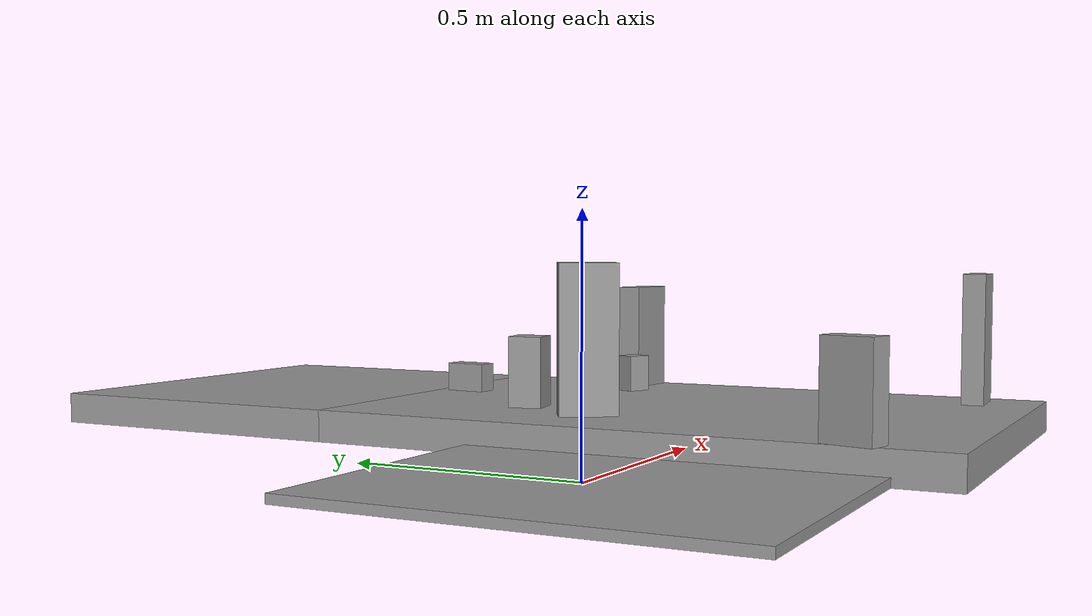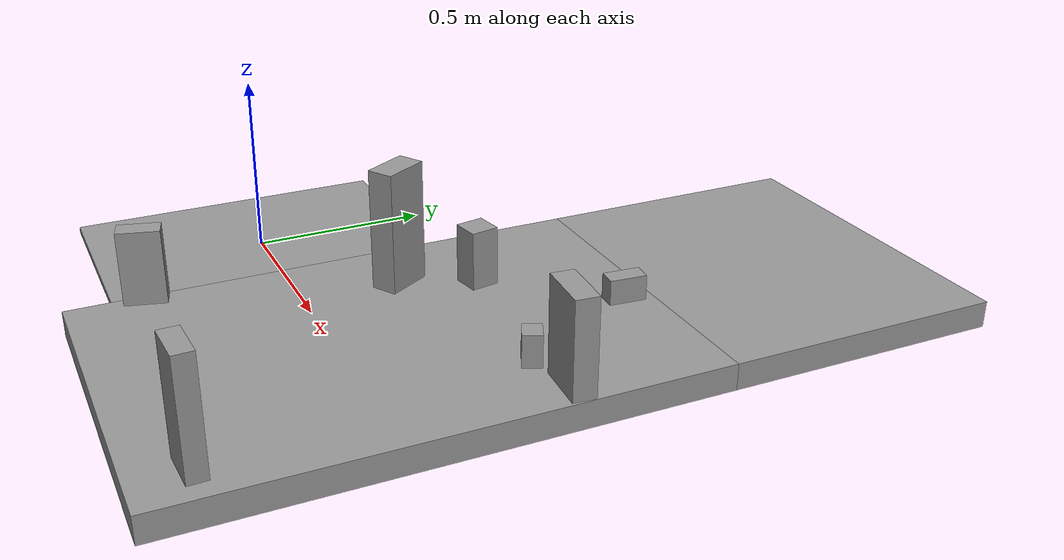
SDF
<?xml version="1.0" ?>
<sdf version="1.6">
  <model name="obstacles">
    <link name="link_0">
      <pose>0.8101467834292668 0.10807207644429961 0.017239837555798554 0.0 0.0 0.0</pose>
      <visual name="visual_0">
        <geometry>
          <box>
            <size>0.9754961767670788 1.4625566355520747 0.0744796751115971</size>
          </box>
        </geometry>
        <material>
          <script>
            <name>Gazebo/Grey</name>
            <uri>file://media/materials/scripts/gazebo.material</uri>
          </script>
        </material>
      </visual>
      <collision name="collision_0">
        <geometry>
          <box>
            <size>0.9754961767670788 1.4625566355520747 0.0744796751115971</size>
          </box>
        </geometry>
        <surface>
          <friction>
            <ode>
              <mu>1</mu>
              <mu2>1</mu2>
            </ode>
          </friction>
        </surface>
      </collision>
    </link>
    <static>1</static>
    <link name="link_1">
      <pose>0.8101467834292668 1.2345108594554024 0.017239837555798554 0.0 0.0 0.0</pose>
      <visual name="visual_1">
        <geometry>
          <box>
            <size>0.9754961767670788 0.7903209304701311 0.0744796751115971</size>
          </box>
        </geometry>
        <material>
          <script>
            <name>Gazebo/Grey</name>
            <uri>file://media/materials/scripts/gazebo.material</uri>
          </script>
        </material>
      </visual>
      <collision name="collision_1">
        <geometry>
          <box>
            <size>0.9754961767670788 0.7903209304701311 0.0744796751115971</size>
          </box>
        </geometry>
        <surface>
          <friction>
            <ode>
              <mu>1</mu>
              <mu2>1</mu2>
            </ode>
          </friction>
        </surface>
      </collision>
    </link>
    <static>1</static>
    <link name="link_2">
      <pose>-0.014353472603504778 -0.01901769466640707 -0.01 0.0 0.0 0.0</pose>
      <visual name="visual_2">
        <geometry>
          <box>
            <size>0.6735043352984644 0.9306543445147867 0.02</size>
          </box>
        </geometry>
        <material>
          <script>
            <name>Gazebo/Grey</name>
            <uri>file://media/materials/scripts/gazebo.material</uri>
          </script>
        </material>
      </visual>
      <collision name="collision_2">
        <geometry>
          <box>
            <size>0.6735043352984644 0.9306543445147867 0.02</size>
          </box>
        </geometry>
        <surface>
          <friction>
            <ode>
              <mu>1</mu>
              <mu2>1</mu2>
            </ode>
          </friction>
        </surface>
      </collision>
    </link>
    <static>1</static>
    <link name="link_3">
      <pose>1.218301813910721 0.4218626756772822 0.18841944536093994 0.0 0.0 1.4942483861690181</pose>
      <visual name="visual_3">
        <geometry>
          <box>
            <size>0.0632713918307948 0.14979880931645792 0.2678795404986857</size>
          </box>
        </geometry>
        <material>
          <script>
            <name>Gazebo/Grey</name>
            <uri>file://media/materials/scripts/gazebo.material</uri>
          </script>
        </material>
      </visual>
      <collision name="collision_3">
        <geometry>
          <box>
            <size>0.0632713918307948 0.14979880931645792 0.2678795404986857</size>
          </box>
        </geometry>
        <surface>
          <friction>
            <ode>
              <mu>1</mu>
              <mu2>1</mu2>
            </ode>
          </friction>
        </surface>
      </collision>
    </link>
    <static>1</static>
    <link name="link_4">
      <pose>0.6157568581657392 0.44335645136269364 0.13793017755549955 0.0 0.0 0.1815625687604088</pose>
      <visual name="visual_4">
        <geometry>
          <box>
            <size>0.07863818320035157 0.07945391425595395 0.1669010048878049</size>
          </box>
        </geometry>
        <material>
          <script>
            <name>Gazebo/Grey</name>
            <uri>file://media/materials/scripts/gazebo.material</uri>
          </script>
        </material>
      </visual>
      <collision name="collision_4">
        <geometry>
          <box>
            <size>0.07863818320035157 0.07945391425595395 0.1669010048878049</size>
          </box>
        </geometry>
        <surface>
          <friction>
            <ode>
              <mu>1</mu>
              <mu2>1</mu2>
            </ode>
          </friction>
        </surface>
      </collision>
    </link>
    <static>1</static>
    <link name="link_5">
      <pose>0.8730942937828734 0.7590052431920166 0.09026910370419583 0.0 0.0 1.4932153691733698</pose>
      <visual name="visual_5">
        <geometry>
          <box>
            <size>0.10502196506189745 0.05290630050161831 0.07157885718519746</size>
          </box>
        </geometry>
        <material>
          <script>
            <name>Gazebo/Grey</name>
            <uri>file://media/materials/scripts/gazebo.material</uri>
          </script>
        </material>
      </visual>
      <collision name="collision_5">
        <geometry>
          <box>
            <size>0.10502196506189745 0.05290630050161831 0.07157885718519746</size>
          </box>
        </geometry>
        <surface>
          <friction>
            <ode>
              <mu>1</mu>
              <mu2>1</mu2>
            </ode>
          </friction>
        </surface>
      </collision>
    </link>
    <static>1</static>
    <link name="link_6">
      <pose>1.078113569037598 0.3839014877822696 0.10001164868943499 0.0 0.0 1.1474784122054549</pose>
      <visual name="visual_6">
        <geometry>
          <box>
            <size>0.052427663491257326 0.0625452463666823 0.09106394715567578</size>
          </box>
        </geometry>
        <material>
          <script>
            <name>Gazebo/Grey</name>
            <uri>file://media/materials/scripts/gazebo.material</uri>
          </script>
        </material>
      </visual>
      <collision name="collision_6">
        <geometry>
          <box>
            <size>0.052427663491257326 0.0625452463666823 0.09106394715567578</size>
          </box>
        </geometry>
        <surface>
          <friction>
            <ode>
              <mu>1</mu>
              <mu2>1</mu2>
            </ode>
          </friction>
        </surface>
      </collision>
    </link>
    <static>1</static>
    <link name="link_7">
      <pose>0.5272623236150856 0.24732774494720977 0.22523217166022202 0.0 0.0 0.540569614134878</pose>
      <visual name="visual_7">
        <geometry>
          <box>
            <size>0.07531060730378093 0.13423367004594983 0.34150499309724985</size>
          </box>
        </geometry>
        <material>
          <script>
            <name>Gazebo/Grey</name>
            <uri>file://media/materials/scripts/gazebo.material</uri>
          </script>
        </material>
      </visual>
      <collision name="collision_7">
        <geometry>
          <box>
            <size>0.07531060730378093 0.13423367004594983 0.34150499309724985</size>
          </box>
        </geometry>
        <surface>
          <friction>
            <ode>
              <mu>1</mu>
              <mu2>1</mu2>
            </ode>
          </friction>
        </surface>
      </collision>
    </link>
    <static>1</static>
    <link name="link_8">
      <pose>1.1811909477859837 -0.47666864787883845 0.21049485211784966 0.0 0.0 0.04385746671100756</pose>
      <visual name="visual_8">
        <geometry>
          <box>
            <size>0.12162907447010808 0.05241762712192896 0.3120303540125051</size>
          </box>
        </geometry>
        <material>
          <script>
            <name>Gazebo/Grey</name>
            <uri>file://media/materials/scripts/gazebo.material</uri>
          </script>
        </material>
      </visual>
      <collision name="collision_8">
        <geometry>
          <box>
            <size>0.12162907447010808 0.05241762712192896 0.3120303540125051</size>
          </box>
        </geometry>
        <surface>
          <friction>
            <ode>
              <mu>1</mu>
              <mu2>1</mu2>
            </ode>
          </friction>
        </surface>
      </collision>
    </link>
    <static>1</static>
    <link name="link_9">
      <pose>0.34455505057914604 -0.4055325870583578 0.15916772726484454 0.0 0.0 1.3118172256505896</pose>
      <visual name="visual_9">
        <geometry>
          <box>
            <size>0.11598712095689696 0.059856524684130386 0.2093761043064949</size>
          </box>
        </geometry>
        <material>
          <script>
            <name>Gazebo/Grey</name>
            <uri>file://media/materials/scripts/gazebo.material</uri>
          </script>
        </material>
      </visual>
      <collision name="collision_9">
        <geometry>
          <box>
            <size>0.11598712095689696 0.059856524684130386 0.2093761043064949</size>
          </box>
        </geometry>
        <surface>
          <friction>
            <ode>
              <mu>1</mu>
              <mu2>1</mu2>
            </ode>
          </friction>
        </surface>
      </collision>
    </link>
    <static>1</static>
  </model>
</sdf>
